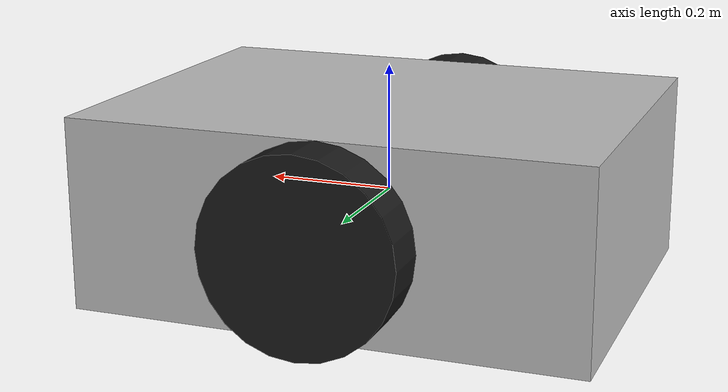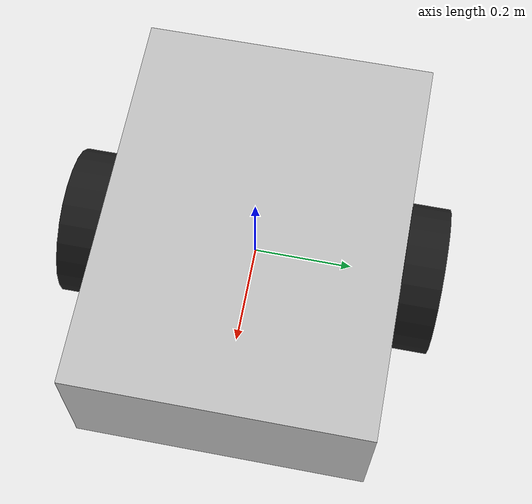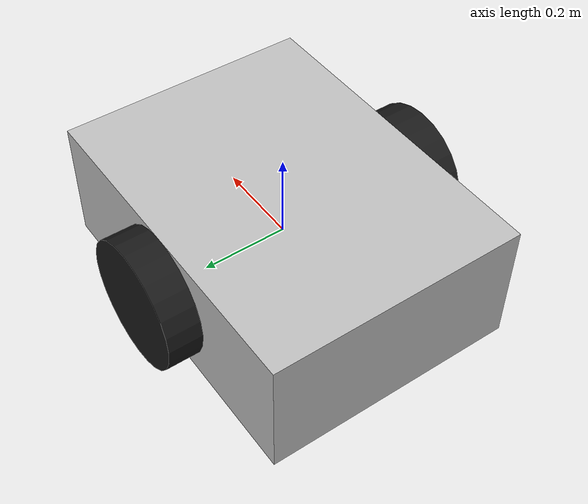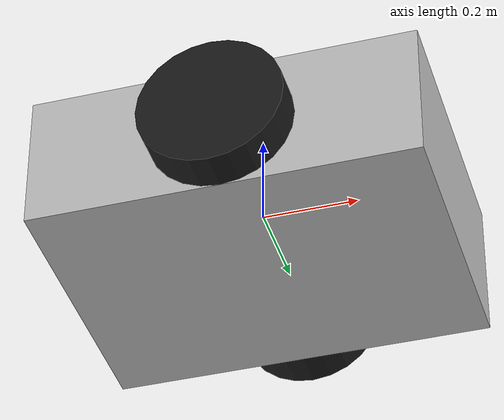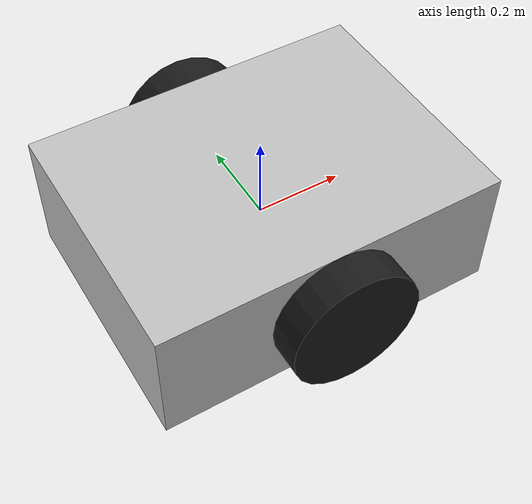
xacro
<?xml version="1.0"?>
<robot name="mars_rover" xmlns:xacro="http://www.ros.org/wiki/xacro">

  <!-- Material definitions -->
  <material name="silver">
    <color rgba="0.75 0.75 0.75 1.0"/>
  </material>

  <material name="black">
    <color rgba="0.1 0.1 0.1 1.0"/>
  </material>

  <!-- Constants -->
  <xacro:property name="M_PI" value="3.1415926535897931"/>

  <!-- Rover dimensions -->
  <xacro:property name="chassis_length" value="0.8"/>
  <xacro:property name="chassis_width" value="0.6"/>
  <xacro:property name="chassis_height" value="0.3"/>
  <xacro:property name="chassis_mass" value="30.0"/>

  <!-- Wheel properties -->
  <xacro:property name="wheel_radius" value="0.15"/>
  <xacro:property name="wheel_width" value="0.08"/>
  <xacro:property name="wheel_mass" value="2.0"/>
  <xacro:property name="wheel_separation" value="0.68"/>

  <!-- ==================== BASE LINK (CHASSIS) ==================== -->
  <link name="base_link">
    <visual>
      <geometry>
        <box size="${chassis_length} ${chassis_width} ${chassis_height}"/>
      </geometry>
      <material name="silver"/>
    </visual>

    <collision>
      <geometry>
        <box size="${chassis_length} ${chassis_width} ${chassis_height}"/>
      </geometry>
    </collision>

    <inertial>
      <mass value="${chassis_mass}"/>
      <inertia
        ixx="1.5" ixy="0.0" ixz="0.0"
        iyy="2.0" iyz="0.0"
        izz="2.5"/>
    </inertial>
  </link>

  <!-- ==================== WHEEL MACRO ==================== -->
  <xacro:macro name="wheel" params="prefix y_offset">
    <link name="${prefix}_wheel">
      <visual>
        <geometry>
          <cylinder radius="${wheel_radius}" length="${wheel_width}"/>
        </geometry>
        <material name="black"/>
      </visual>

      <collision>
        <geometry>
          <cylinder radius="${wheel_radius}" length="${wheel_width}"/>
        </geometry>
      </collision>

      <inertial>
        <mass value="${wheel_mass}"/>
        <inertia
          ixx="0.01" ixy="0.0" ixz="0.0"
          iyy="0.01" iyz="0.0"
          izz="0.01"/>
      </inertial>
    </link>

    <joint name="${prefix}_wheel_joint" type="continuous">
      <parent link="base_link"/>
      <child link="${prefix}_wheel"/>
      <origin xyz="0 ${y_offset} 0" rpy="${M_PI/2} 0 0"/>
      <axis xyz="0 0 1"/>
    </joint>
  </xacro:macro>

  <!-- ==================== CASTER MACRO ==================== -->
  <xacro:macro name="caster" params="prefix x_offset">
    <link name="${prefix}_caster">
      <visual>
        <geometry>
          <sphere radius="0.05"/>
        </geometry>
        <material name="black"/>
      </visual>

      <collision>
        <geometry>
          <sphere radius="0.05"/>
        </geometry>
      </collision>

      <inertial>
        <mass value="0.5"/>
        <inertia
          ixx="0.001" ixy="0.0" ixz="0.0"
          iyy="0.001" iyz="0.0"
          izz="0.001"/>
      </inertial>
    </link>

    <joint name="${prefix}_caster_joint" type="fixed">
      <parent link="base_link"/>
      <child link="${prefix}_caster"/>
      <origin xyz="${x_offset} 0 -0.1" rpy="0 0 0"/>
    </joint>
  </xacro:macro>

  <!-- ==================== INSTANTIATE COMPONENTS ==================== -->

  <!-- Main wheels -->
  <xacro:wheel prefix="left" y_offset="0.34"/>
  <xacro:wheel prefix="right" y_offset="-0.34"/>

  <!-- Casters for stability -->
  <xacro:caster prefix="front" x_offset="0.3"/>
  <xacro:caster prefix="rear" x_offset="-0.3"/>

  <!-- ==================== GAZEBO PLUGINS ==================== -->

  <!-- Differential Drive Controller -->
  <gazebo>
    <plugin name="differential_drive_controller" filename="libgazebo_ros_diff_drive.so">
      <update_rate>50</update_rate>

      <!-- Wheel Configuration -->
      <left_joint>left_wheel_joint</left_joint>
      <right_joint>right_wheel_joint</right_joint>
      <wheel_separation>${wheel_separation}</wheel_separation>
      <wheel_diameter>${wheel_radius * 2}</wheel_diameter>

      <!-- Limits -->
      <max_wheel_torque>20</max_wheel_torque>
      <max_wheel_acceleration>1.0</max_wheel_acceleration>

      <!-- Topics -->
      <command_topic>cmd_vel</command_topic>
      <odometry_topic>odom</odometry_topic>
      <odometry_frame>odom</odometry_frame>

      <!-- Odometry -->
      <publish_odom>true</publish_odom>
      <publish_odom_tf>true</publish_odom_tf>
      <publish_wheel_tf>true</publish_wheel_tf>

      <!-- Frames -->
      <robot_base_frame>base_link</robot_base_frame>
    </plugin>
  </gazebo>

  <!-- ROS Control -->
  <gazebo>
    <plugin name="gazebo_ros_control" filename="libgazebo_ros_control.so">
      <robot_namespace>/</robot_namespace>
    </plugin>
  </gazebo>

</robot>
